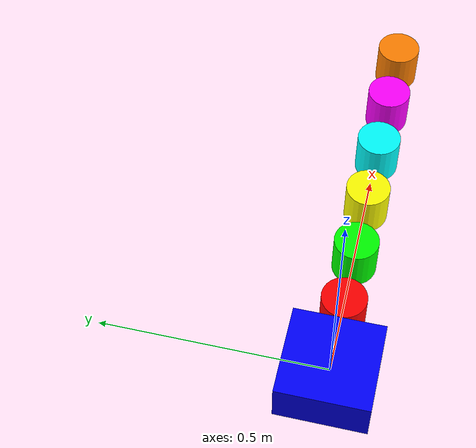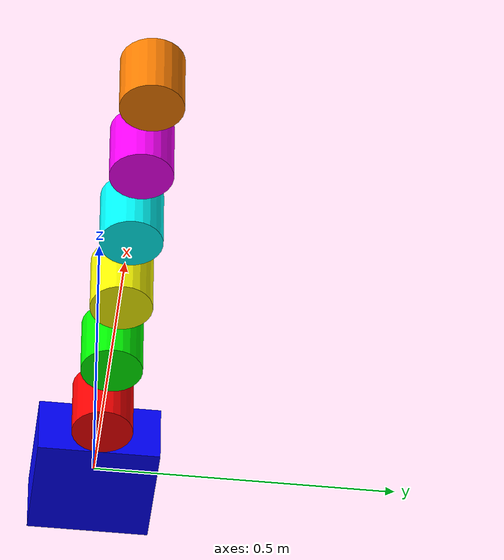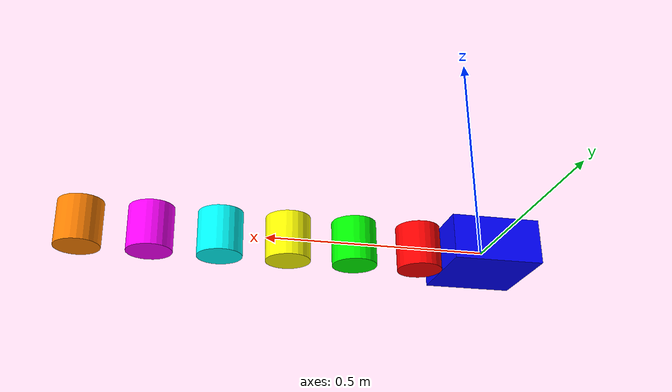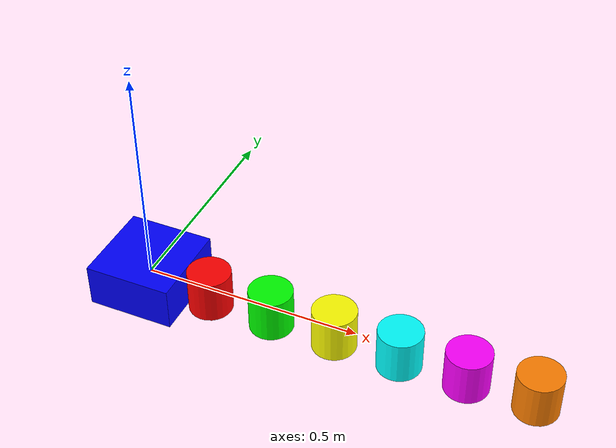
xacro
<?xml version="1.0"?>
<robot xmlns:xacro="http://www.ros.org/wiki/xacro" name="refboard_robot">

  <xacro:arg name="can_interface" default="can0"/>
  <xacro:arg name="use_mock_hardware" default="false"/>
  <xacro:arg name="mock_sensor_commands" default="false"/>

  <!-- Import refboard ros2_control description -->
  <xacro:include filename="$(find refboard_ros2_control)/description/refboard_ros2_control.xacro"/>

  <!-- Base link -->
  <link name="base_link">
    <visual>
      <geometry>
        <box size="0.2 0.2 0.1"/>
      </geometry>
      <material name="blue">
        <color rgba="0 0 1 1"/>
      </material>
    </visual>
    <collision>
      <geometry>
        <box size="0.2 0.2 0.1"/>
      </geometry>
    </collision>
    <inertial>
      <mass value="1.0"/>
      <inertia ixx="0.01" ixy="0" ixz="0" iyy="0.01" iyz="0" izz="0.01"/>
    </inertial>
  </link>

  <!-- Joint X Link -->
  <link name="joint_x_link">
    <visual>
      <geometry>
        <cylinder radius="0.05" length="0.1"/>
      </geometry>
      <material name="red">
        <color rgba="1 0 0 1"/>
      </material>
    </visual>
    <collision>
      <geometry>
        <cylinder radius="0.05" length="0.1"/>
      </geometry>
    </collision>
    <inertial>
      <mass value="0.5"/>
      <inertia ixx="0.005" ixy="0" ixz="0" iyy="0.005" iyz="0" izz="0.005"/>
    </inertial>
  </link>

  <!-- Joint Y Link -->
  <link name="joint_y_link">
    <visual>
      <geometry>
        <cylinder radius="0.05" length="0.1"/>
      </geometry>
      <material name="green">
        <color rgba="0 1 0 1"/>
      </material>
    </visual>
    <collision>
      <geometry>
        <cylinder radius="0.05" length="0.1"/>
      </geometry>
    </collision>
    <inertial>
      <mass value="0.5"/>
      <inertia ixx="0.005" ixy="0" ixz="0" iyy="0.005" iyz="0" izz="0.005"/>
    </inertial>
  </link>

  <!-- Joint Z Link -->
  <link name="joint_z_link">
    <visual>
      <geometry>
        <cylinder radius="0.05" length="0.1"/>
      </geometry>
      <material name="yellow">
        <color rgba="1 1 0 1"/>
      </material>
    </visual>
    <collision>
      <geometry>
        <cylinder radius="0.05" length="0.1"/>
      </geometry>
    </collision>
    <inertial>
      <mass value="0.5"/>
      <inertia ixx="0.005" ixy="0" ixz="0" iyy="0.005" iyz="0" izz="0.005"/>
    </inertial>
  </link>

  <!-- Joint A Link -->
  <link name="joint_a_link">
    <visual>
      <geometry>
        <cylinder radius="0.05" length="0.1"/>
      </geometry>
      <material name="cyan">
        <color rgba="0 1 1 1"/>
      </material>
    </visual>
    <collision>
      <geometry>
        <cylinder radius="0.05" length="0.1"/>
      </geometry>
    </collision>
    <inertial>
      <mass value="0.5"/>
      <inertia ixx="0.005" ixy="0" ixz="0" iyy="0.005" iyz="0" izz="0.005"/>
    </inertial>
  </link>

  <!-- Joint B Link -->
  <link name="joint_b_link">
    <visual>
      <geometry>
        <cylinder radius="0.05" length="0.1"/>
      </geometry>
      <material name="magenta">
        <color rgba="1 0 1 1"/>
      </material>
    </visual>
    <collision>
      <geometry>
        <cylinder radius="0.05" length="0.1"/>
      </geometry>
    </collision>
    <inertial>
      <mass value="0.5"/>
      <inertia ixx="0.005" ixy="0" ixz="0" iyy="0.005" iyz="0" izz="0.005"/>
    </inertial>
  </link>

  <!-- Joint C Link -->
  <link name="joint_c_link">
    <visual>
      <geometry>
        <cylinder radius="0.05" length="0.1"/>
      </geometry>
      <material name="orange">
        <color rgba="1 0.5 0 1"/>
      </material>
    </visual>
    <collision>
      <geometry>
        <cylinder radius="0.05" length="0.1"/>
      </geometry>
    </collision>
    <inertial>
      <mass value="0.5"/>
      <inertia ixx="0.005" ixy="0" ixz="0" iyy="0.005" iyz="0" izz="0.005"/>
    </inertial>
  </link>

  <!-- Joints -->
  <joint name="joint_x" type="revolute">
    <parent link="base_link"/>
    <child link="joint_x_link"/>
    <origin xyz="0.15 0 0" rpy="0 0 0"/>
    <axis xyz="0 0 1"/>
    <limit lower="-3.14159" upper="3.14159" effort="10" velocity="1"/>
  </joint>

  <joint name="joint_y" type="revolute">
    <parent link="joint_x_link"/>
    <child link="joint_y_link"/>
    <origin xyz="0.15 0 0" rpy="0 0 0"/>
    <axis xyz="0 1 0"/>
    <limit lower="-2.0944" upper="1.2217" effort="10" velocity="1"/>
  </joint>

  <joint name="joint_z" type="revolute">
    <parent link="joint_y_link"/>
    <child link="joint_z_link"/>
    <origin xyz="0.15 0 0" rpy="0 0 0"/>
    <axis xyz="0 0 1"/>
    <limit lower="-1.7453" upper="0.8727" effort="10" velocity="1"/>
  </joint>

  <joint name="joint_a" type="revolute">
    <parent link="joint_z_link"/>
    <child link="joint_a_link"/>
    <origin xyz="0.15 0 0" rpy="0 0 0"/>
    <axis xyz="1 0 0"/>
    <limit lower="-3.14159" upper="3.14159" effort="10" velocity="1"/>
  </joint>

  <joint name="joint_b" type="revolute">
    <parent link="joint_a_link"/>
    <child link="joint_b_link"/>
    <origin xyz="0.15 0 0" rpy="0 0 0"/>
    <axis xyz="0 1 0"/>
    <limit lower="-1.7453" upper="1.7453" effort="10" velocity="1"/>
  </joint>

  <joint name="joint_c" type="revolute">
    <parent link="joint_b_link"/>
    <child link="joint_c_link"/>
    <origin xyz="0.15 0 0" rpy="0 0 0"/>
    <axis xyz="0 0 1"/>
    <limit lower="-3.14159" upper="3.14159" effort="10" velocity="1"/>
  </joint>

  <!-- Include RefBoard ros2_control interface -->
  <xacro:refboard_ros2_control
    name="RefBoardHardwareInterface"
    can_interface="$(arg can_interface)"
  />

</robot>
